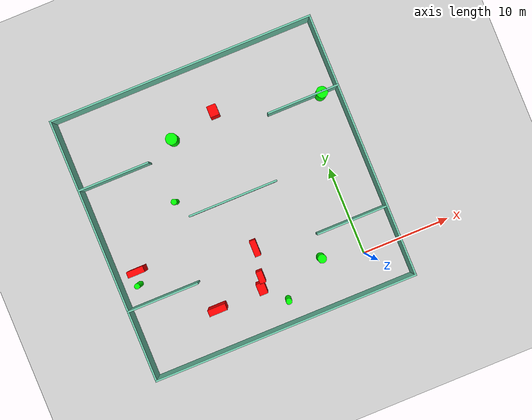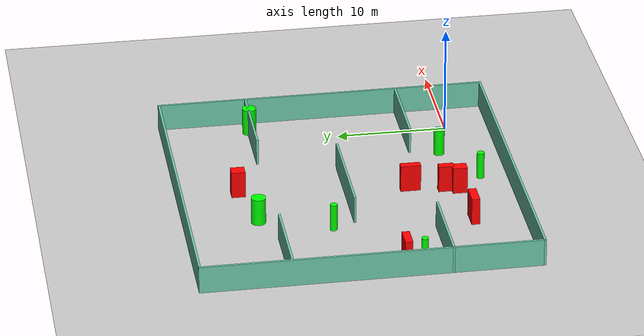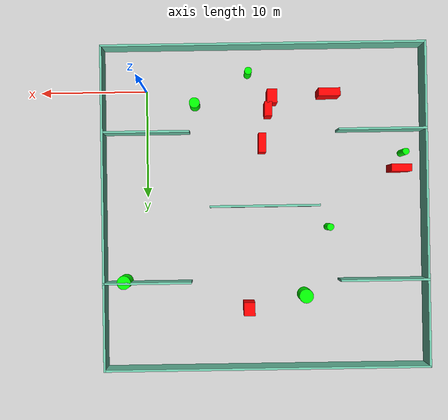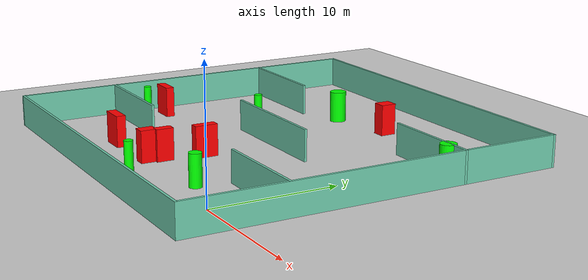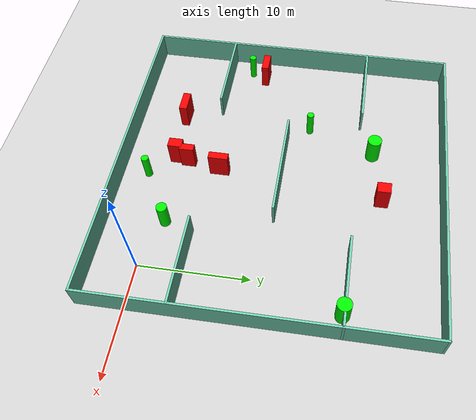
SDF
<sdf version="1.7">
 <world name="default">
  <light name="sun" type="directional">
   <pose>0 0 10 0 -0 0</pose>
   <diffuse>0.8 0.8 0.8 1</diffuse>
   <specular>0.2 0.2 0.2 1</specular>
   <attenuation>
    <range>1000</range>
    <constant>0.9</constant>
    <linear>0.01</linear>
    <quadratic>0.001</quadratic>
   </attenuation>
   <direction>-0.5 0.1 -0.9</direction>
   <spot><inner_angle>0</inner_angle><outer_angle>0</outer_angle><falloff>0</falloff></spot>
  </light>
  <model name="ground_plane">
   <static>1</static>
   <link name="link">
    <collision name="collision">
     <geometry><plane><normal>0 0 1</normal><size>100 100</size></plane></geometry>
     <surface>
      <contact><collide_bitmask>65535</collide_bitmask></contact>
      <friction><ode><mu>100</mu><mu2>50</mu2></ode></friction>
     </surface>
    </collision>
    <visual name="visual">
     <cast_shadows>0</cast_shadows>
     <geometry><plane><normal>0 0 1</normal><size>100 100</size></plane></geometry>
     <material>
      <script><uri>file://media/materials/scripts/gazebo.material</uri><name>Gazebo/Grey</name></script>
     </material>
    </visual>
   </link>
  </model>
  <gravity>0 0 -9.8</gravity>
  <magnetic_field>6e-06 2.3e-05 -4.2e-05</magnetic_field>
  <atmosphere type="adiabatic"/>
  <physics type="ode">
   <max_step_size>0.001</max_step_size>
   <real_time_factor>1</real_time_factor>
   <real_time_update_rate>1000</real_time_update_rate>
  </physics>
  <scene><ambient>0.4 0.4 0.4 1</ambient><background>0.7 0.7 0.7 1</background><shadows>1</shadows></scene>
  <spherical_coordinates>
   <surface_model>EARTH_WGS84</surface_model>
   <latitude_deg>0</latitude_deg>
   <longitude_deg>0</longitude_deg>
   <elevation>0</elevation>
   <heading_deg>0</heading_deg>
  </spherical_coordinates>
  <model name="my_base_walls">
   <link name="Wall_10">
    <collision name="Wall_10_Collision">
     <geometry><box><size>8.2 0.2 2.5</size></box></geometry>
     <pose>0 0 1.25 0 -0 0</pose>
    </collision>
    <visual name="Wall_10_Visual">
     <pose>0 0 1.25 0 -0 0</pose>
     <geometry><box><size>8.2 0.2 2.5</size></box></geometry>
     <material>
      <script><uri>file://media/materials/scripts/gazebo.material</uri><name>Gazebo/Grey</name></script>
      <ambient>0.435294 0.796078 0.67451 1</ambient>
     </material>
     <meta><layer>0</layer></meta>
    </visual>
    <pose>-11 -7 0 0 -0 0</pose>
   </link>
   <link name="Wall_12">
    <collision name="Wall_12_Collision">
     <geometry><box><size>8.2 0.2 2.5</size></box></geometry>
     <pose>0 0 1.25 0 -0 0</pose>
    </collision>
    <visual name="Wall_12_Visual">
     <pose>0 0 1.25 0 -0 0</pose>
     <geometry><box><size>8.2 0.2 2.5</size></box></geometry>
     <material>
      <script><uri>file://media/materials/scripts/gazebo.material</uri><name>Gazebo/Grey</name></script>
      <ambient>0.435294 0.796078 0.67451 1</ambient>
     </material>
     <meta><layer>0</layer></meta>
    </visual>
    <pose>-11 7 0 0 -0 0</pose>
   </link>
   <link name="Wall_14">
    <collision name="Wall_14_Collision">
     <geometry><box><size>8.2 0.2 2.5</size></box></geometry>
     <pose>0 0 1.25 0 -0 0</pose>
    </collision>
    <visual name="Wall_14_Visual">
     <pose>0 0 1.25 0 -0 0</pose>
     <geometry><box><size>8.2 0.2 2.5</size></box></geometry>
     <material>
      <script><uri>file://media/materials/scripts/gazebo.material</uri><name>Gazebo/Grey</name></script>
      <ambient>0.435294 0.796078 0.67451 1</ambient>
     </material>
     <meta><layer>0</layer></meta>
    </visual>
    <pose>11 7 0 0 -0 3.14159</pose>
   </link>
   <link name="Wall_16">
    <collision name="Wall_16_Collision">
     <geometry><box><size>10.2 0.2 2.5</size></box></geometry>
     <pose>0 0 1.25 0 -0 0</pose>
    </collision>
    <visual name="Wall_16_Visual">
     <pose>0 0 1.25 0 -0 0</pose>
     <geometry><box><size>10.2 0.2 2.5</size></box></geometry>
     <material>
      <script><uri>file://media/materials/scripts/gazebo.material</uri><name>Gazebo/Grey</name></script>
      <ambient>0.435294 0.796078 0.67451 1</ambient>
     </material>
     <meta><layer>0</layer></meta>
    </visual>
    <pose>0 0 0 0 -0 3.14159</pose>
   </link>
   <link name="Wall_2">
    <collision name="Wall_2_Collision">
     <geometry><box><size>30.2 0.2 2.5</size></box></geometry>
     <pose>0 0 1.25 0 -0 0</pose>
    </collision>
    <visual name="Wall_2_Visual">
     <pose>0 0 1.25 0 -0 0</pose>
     <geometry><box><size>30.2 0.2 2.5</size></box></geometry>
     <material>
      <script><uri>file://media/materials/scripts/gazebo.material</uri><name>Gazebo/Grey</name></script>
      <ambient>0.435294 0.796078 0.67451 1</ambient>
     </material>
     <meta><layer>0</layer></meta>
    </visual>
    <pose>0 -15 0 0 -0 3.14159</pose>
   </link>
   <link name="Wall_3">
    <collision name="Wall_3_Collision">
     <geometry><box><size>30.2 0.2 2.5</size></box></geometry>
     <pose>0 0 1.25 0 -0 0</pose>
    </collision>
    <visual name="Wall_3_Visual">
     <pose>0 0 1.25 0 -0 0</pose>
     <geometry><box><size>30.2 0.2 2.5</size></box></geometry>
     <material>
      <script><uri>file://media/materials/scripts/gazebo.material</uri><name>Gazebo/Grey</name></script>
      <ambient>0.435294 0.796078 0.67451 1</ambient>
     </material>
     <meta><layer>0</layer></meta>
    </visual>
    <pose>-15 0 0 0 -0 1.5708</pose>
   </link>
   <link name="Wall_4">
    <collision name="Wall_4_Collision">
     <geometry><box><size>30.2 0.2 2.5</size></box></geometry>
     <pose>0 0 1.25 0 -0 0</pose>
    </collision>
    <visual name="Wall_4_Visual">
     <pose>0 0 1.25 0 -0 0</pose>
     <geometry><box><size>30.2 0.2 2.5</size></box></geometry>
     <material>
      <script><uri>file://media/materials/scripts/gazebo.material</uri><name>Gazebo/Grey</name></script>
      <ambient>0.435294 0.796078 0.67451 1</ambient>
     </material>
     <meta><layer>0</layer></meta>
    </visual>
    <pose>0 15 0 0 -0 0</pose>
   </link>
   <link name="Wall_6">
    <collision name="Wall_6_Collision">
     <geometry><box><size>30.2 0.2 2.5</size></box></geometry>
     <pose>0 0 1.25 0 -0 0</pose>
    </collision>
    <visual name="Wall_6_Visual">
     <pose>0 0 1.25 0 -0 0</pose>
     <geometry><box><size>30.2 0.2 2.5</size></box></geometry>
     <material>
      <script><uri>file://media/materials/scripts/gazebo.material</uri><name>Gazebo/Grey</name></script>
      <ambient>0.435294 0.796078 0.67451 1</ambient>
     </material>
     <meta><layer>0</layer></meta>
    </visual>
    <pose>15 0 0 0 -0 1.5708</pose>
   </link>
   <link name="Wall_8">
    <collision name="Wall_8_Collision">
     <geometry><box><size>8.2 0.2 2.5</size></box></geometry>
     <pose>0 0 1.25 0 -0 0</pose>
    </collision>
    <visual name="Wall_8_Visual">
     <pose>0 0 1.25 0 -0 0</pose>
     <geometry><box><size>8.2 0.2 2.5</size></box></geometry>
     <material>
      <script><uri>file://media/materials/scripts/gazebo.material</uri><name>Gazebo/Grey</name></script>
      <ambient>0.435294 0.796078 0.67451 1</ambient>
     </material>
     <meta><layer>0</layer></meta>
    </visual>
    <pose>11 -7 0 0 -0 3.14159</pose>
   </link>
   <static>1</static>
   <pose>-11 11 0 0 -0 0</pose>
  </model>
  <model name="cylinder1">
   <static>1</static>
   <link name="link">
    <inertial>
     <mass>1</mass>
     <inertia><ixx>0.5</ixx><ixy>0</ixy><ixz>0</ixz><iyy>0.5</iyy><iyz>0</iyz><izz>1</izz></inertia>
    </inertial>
    <collision name="collision">
     <geometry><cylinder><radius>0.6369453620570343</radius><length>2.5</length></cylinder></geometry>
    </collision>
    <visual name="visual">
     <geometry><cylinder><radius>0.6369453620570343</radius><length>2.5</length></cylinder></geometry>
     <material>
      <ambient>0 1 0 1</ambient>
      <diffuse>0 1 0 1</diffuse>
      <specular>0.1 0.1 0.1 1</specular>
      <emissive>0 0 0 0</emissive>
     </material>
    </visual>
   </link>
   <pose>2.1331556835077095 17.902934842834824 1.25 0 0 0</pose>
  </model>
  <model name="cylinder2">
   <static>1</static>
   <link name="link">
    <inertial>
     <mass>1</mass>
     <inertia><ixx>0.5</ixx><ixy>0</ixy><ixz>0</ixz><iyy>0.5</iyy><iyz>0</iyz><izz>1</izz></inertia>
    </inertial>
    <collision name="collision">
     <geometry><cylinder><radius>0.32550734262620246</radius><length>2.5</length></cylinder></geometry>
    </collision>
    <visual name="visual">
     <geometry><cylinder><radius>0.32550734262620246</radius><length>2.5</length></cylinder></geometry>
     <material>
      <ambient>0 1 0 1</ambient>
      <diffuse>0 1 0 1</diffuse>
      <specular>0.1 0.1 0.1 1</specular>
      <emissive>0 0 0 0</emissive>
     </material>
    </visual>
   </link>
   <pose>-16.986984074684045 13.040953209470988 1.25 0 0 0</pose>
  </model>
  <model name="cylinder3">
   <static>1</static>
   <link name="link">
    <inertial>
     <mass>1</mass>
     <inertia><ixx>0.5</ixx><ixy>0</ixy><ixz>0</ixz><iyy>0.5</iyy><iyz>0</iyz><izz>1</izz></inertia>
    </inertial>
    <collision name="collision">
     <geometry><cylinder><radius>0.4849255704355909</radius><length>2.5</length></cylinder></geometry>
    </collision>
    <visual name="visual">
     <geometry><cylinder><radius>0.4849255704355909</radius><length>2.5</length></cylinder></geometry>
     <material>
      <ambient>0 1 0 1</ambient>
      <diffuse>0 1 0 1</diffuse>
      <specular>0.1 0.1 0.1 1</specular>
      <emissive>0 0 0 0</emissive>
     </material>
    </visual>
   </link>
   <pose>-4.604211241120463 1.391272730811111 1.25 0 0 0</pose>
  </model>
  <model name="cylinder4">
   <static>1</static>
   <link name="link">
    <inertial>
     <mass>1</mass>
     <inertia><ixx>0.5</ixx><ixy>0</ixy><ixz>0</ixz><iyy>0.5</iyy><iyz>0</iyz><izz>1</izz></inertia>
    </inertial>
    <collision name="collision">
     <geometry><cylinder><radius>0.6528126384888121</radius><length>2.5</length></cylinder></geometry>
    </collision>
    <visual name="visual">
     <geometry><cylinder><radius>0.6528126384888121</radius><length>2.5</length></cylinder></geometry>
     <material>
      <ambient>0 1 0 1</ambient>
      <diffuse>0 1 0 1</diffuse>
      <specular>0.1 0.1 0.1 1</specular>
      <emissive>0 0 0 0</emissive>
     </material>
    </visual>
   </link>
   <pose>-14.685395489573 19.384621252461642 1.25 0 0 0</pose>
  </model>
  <model name="cylinder5">
   <static>1</static>
   <link name="link">
    <inertial>
     <mass>1</mass>
     <inertia><ixx>0.5</ixx><ixy>0</ixy><ixz>0</ixz><iyy>0.5</iyy><iyz>0</iyz><izz>1</izz></inertia>
    </inertial>
    <collision name="collision">
     <geometry><cylinder><radius>0.34142728869195504</radius><length>2.5</length></cylinder></geometry>
    </collision>
    <visual name="visual">
     <geometry><cylinder><radius>0.34142728869195504</radius><length>2.5</length></cylinder></geometry>
     <material>
      <ambient>0 1 0 1</ambient>
      <diffuse>0 1 0 1</diffuse>
      <specular>0.1 0.1 0.1 1</specular>
      <emissive>0 0 0 0</emissive>
     </material>
    </visual>
   </link>
   <pose>-9.617253453120687 -1.4842012599253636 1.25 0 0 0</pose>
  </model>
  <model name="cylinder6">
   <static>1</static>
   <link name="link">
    <inertial>
     <mass>1</mass>
     <inertia><ixx>0.5</ixx><ixy>0</ixy><ixz>0</ixz><iyy>0.5</iyy><iyz>0</iyz><izz>1</izz></inertia>
    </inertial>
    <collision name="collision">
     <geometry><cylinder><radius>0.3106940223124324</radius><length>2.5</length></cylinder></geometry>
    </collision>
    <visual name="visual">
     <geometry><cylinder><radius>0.3106940223124324</radius><length>2.5</length></cylinder></geometry>
     <material>
      <ambient>0 1 0 1</ambient>
      <diffuse>0 1 0 1</diffuse>
      <specular>0.1 0.1 0.1 1</specular>
      <emissive>0 0 0 0</emissive>
     </material>
    </visual>
   </link>
   <pose>-24.05724327165818 6.171880960953125 1.25 0 0 0</pose>
  </model>
  <model name="box1">
   <static>1</static>
   <link name="link">
    <inertial>
     <mass>1</mass>
     <inertia><ixx>0.083</ixx><ixy>0</ixy><ixz>0</ixz><iyy>0.083</iyy><iyz>0</iyz><izz>0.083</izz></inertia>
    </inertial>
    <collision name="collision">
     <geometry><box><size>0.6877947370590312 1.359559515269526 2.5</size></box></geometry>
    </collision>
    <visual name="visual">
     <geometry><box><size>0.6877947370590312 1.359559515269526 2.5</size></box></geometry>
     <material>
      <ambient>1 0 0 1</ambient>
      <diffuse>1 0 0 1</diffuse>
      <specular>0.1 0.1 0.1 1</specular>
      <emissive>0 0 0 0</emissive>
     </material>
    </visual>
    <sensor name="my_contact" type="contact">
     <contact><collision>box_collision</collision><topic>__default_topic__</topic></contact>
    </sensor>
   </link>
   <pose>-11.43379559643167 2.0328188253693114 1.25 0 0 0</pose>
  </model>
  <model name="box2">
   <static>1</static>
   <link name="link">
    <inertial>
     <mass>1</mass>
     <inertia><ixx>0.083</ixx><ixy>0</ixy><ixz>0</ixz><iyy>0.083</iyy><iyz>0</iyz><izz>0.083</izz></inertia>
    </inertial>
    <collision name="collision">
     <geometry><box><size>1.03931329872409 1.2490534392739772 2.5</size></box></geometry>
    </collision>
    <visual name="visual">
     <geometry><box><size>1.03931329872409 1.2490534392739772 2.5</size></box></geometry>
     <material>
      <ambient>1 0 0 1</ambient>
      <diffuse>1 0 0 1</diffuse>
      <specular>0.1 0.1 0.1 1</specular>
      <emissive>0 0 0 0</emissive>
     </material>
    </visual>
    <sensor name="my_contact" type="contact">
     <contact><collision>box_collision</collision><topic>__default_topic__</topic></contact>
    </sensor>
   </link>
   <pose>-9.421339972992072 20.509206011782798 1.25 0 0 0</pose>
  </model>
  <model name="box3">
   <static>1</static>
   <link name="link">
    <inertial>
     <mass>1</mass>
     <inertia><ixx>0.083</ixx><ixy>0</ixy><ixz>0</ixz><iyy>0.083</iyy><iyz>0</iyz><izz>0.083</izz></inertia>
    </inertial>
    <collision name="collision">
     <geometry><box><size>0.9375188265043495 1.2968327404295894 2.5</size></box></geometry>
    </collision>
    <visual name="visual">
     <geometry><box><size>0.9375188265043495 1.2968327404295894 2.5</size></box></geometry>
     <material>
      <ambient>1 0 0 1</ambient>
      <diffuse>1 0 0 1</diffuse>
      <specular>0.1 0.1 0.1 1</specular>
      <emissive>0 0 0 0</emissive>
     </material>
    </visual>
    <sensor name="my_contact" type="contact">
     <contact><collision>box_collision</collision><topic>__default_topic__</topic></contact>
    </sensor>
   </link>
   <pose>-11.802814293353444 0.854296484158886 1.25 0 0 0</pose>
  </model>
  <model name="box4">
   <static>1</static>
   <link name="link">
    <inertial>
     <mass>1</mass>
     <inertia><ixx>0.083</ixx><ixy>0</ixy><ixz>0</ixz><iyy>0.083</iyy><iyz>0</iyz><izz>0.083</izz></inertia>
    </inertial>
    <collision name="collision">
     <geometry><box><size>2.0208130809136087 0.7391549816333708 2.5</size></box></geometry>
    </collision>
    <visual name="visual">
     <geometry><box><size>2.0208130809136087 0.7391549816333708 2.5</size></box></geometry>
     <material>
      <ambient>1 0 0 1</ambient>
      <diffuse>1 0 0 1</diffuse>
      <specular>0.1 0.1 0.1 1</specular>
      <emissive>0 0 0 0</emissive>
     </material>
    </visual>
    <sensor name="my_contact" type="contact">
     <contact><collision>box_collision</collision><topic>__default_topic__</topic></contact>
    </sensor>
   </link>
   <pose>-17.085265939679154 0.5508641423328902 1.25 0 0 0</pose>
  </model>
  <model name="box5">
   <static>1</static>
   <link name="link">
    <inertial>
     <mass>1</mass>
     <inertia><ixx>0.083</ixx><ixy>0</ixy><ixz>0</ixz><iyy>0.083</iyy><iyz>0</iyz><izz>0.083</izz></inertia>
    </inertial>
    <collision name="collision">
     <geometry><box><size>1.9043161015060424 0.6857427386889624 2.5</size></box></geometry>
    </collision>
    <visual name="visual">
     <geometry><box><size>1.9043161015060424 0.6857427386889624 2.5</size></box></geometry>
     <material>
      <ambient>1 0 0 1</ambient>
      <diffuse>1 0 0 1</diffuse>
      <specular>0.1 0.1 0.1 1</specular>
      <emissive>0 0 0 0</emissive>
     </material>
    </visual>
    <sensor name="my_contact" type="contact">
     <contact><collision>box_collision</collision><topic>__default_topic__</topic></contact>
    </sensor>
   </link>
   <pose>-23.654749122833763 7.647077098689156 1.25 0 0 0</pose>
  </model>
  <model name="box6">
   <static>1</static>
   <link name="link">
    <inertial>
     <mass>1</mass>
     <inertia><ixx>0.083</ixx><ixy>0</ixy><ixz>0</ixz><iyy>0.083</iyy><iyz>0</iyz><izz>0.083</izz></inertia>
    </inertial>
    <collision name="collision">
     <geometry><box><size>0.6841499246606422 1.8220900909664843 2.5</size></box></geometry>
    </collision>
    <visual name="visual">
     <geometry><box><size>0.6841499246606422 1.8220900909664843 2.5</size></box></geometry>
     <material>
      <ambient>1 0 0 1</ambient>
      <diffuse>1 0 0 1</diffuse>
      <specular>0.1 0.1 0.1 1</specular>
      <emissive>0 0 0 0</emissive>
     </material>
    </visual>
    <sensor name="my_contact" type="contact">
     <contact><collision>box_collision</collision><topic>__default_topic__</topic></contact>
    </sensor>
   </link>
   <pose>-10.834289921786066 5.146838667549037 1.25 0 0 0</pose>
  </model>
 </world>
</sdf>
